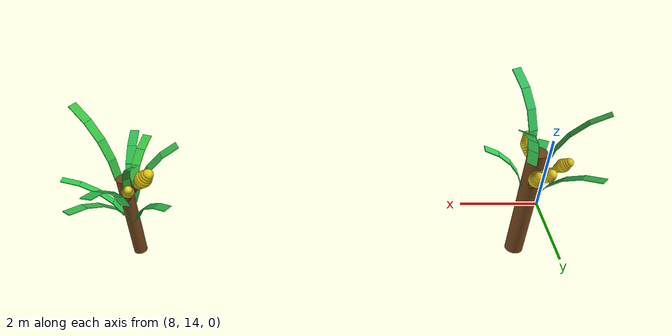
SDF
<sdf version="1.10">
 <world name="tree_world">
  <model name="tree_2_1">
   <pose>9.00 15.59 0 0 0 0</pose>
   <static>true</static>
   <link name="trunk">
    <pose>0 0 1.425 0 0 0</pose>
    <visual name="trunk_vis">
     <geometry><cylinder><radius>0.210</radius><length>2.850</length></cylinder></geometry>
     <material><diffuse>0.45 0.27 0.1 1</diffuse><ambient>0.45 0.27 0.1 1</ambient></material>
    </visual>
   </link>
   <link name="frond_2_1_0">
    <pose>0.205 -0.016 1.965 0 0.396862 -0.080004</pose>
    <visual name="frond_seg_2_1_0_0">
     <pose>0.000 0 0.171 0 0.000000 0</pose>
     <geometry><box><size>0.020 0.201 0.343</size></box></geometry>
     <material><diffuse>0.18 0.83 0.33 1</diffuse><ambient>0.18 0.83 0.33 1</ambient></material>
    </visual>
    <visual name="frond_seg_2_1_0_1">
     <pose>0.044 0 0.508 0 0.261799 0</pose>
     <geometry><box><size>0.020 0.201 0.343</size></box></geometry>
     <material><diffuse>0.18 0.83 0.33 1</diffuse><ambient>0.18 0.83 0.33 1</ambient></material>
    </visual>
    <visual name="frond_seg_2_1_0_2">
     <pose>0.174 0 0.822 0 0.523599 0</pose>
     <geometry><box><size>0.020 0.201 0.343</size></box></geometry>
     <material><diffuse>0.18 0.83 0.33 1</diffuse><ambient>0.18 0.83 0.33 1</ambient></material>
    </visual>
    <visual name="frond_seg_2_1_0_3">
     <pose>0.381 0 1.091 0 0.785398 0</pose>
     <geometry><box><size>0.020 0.201 0.343</size></box></geometry>
     <material><diffuse>0.18 0.83 0.33 1</diffuse><ambient>0.18 0.83 0.33 1</ambient></material>
    </visual>
   </link>
   <link name="frond_2_1_1">
    <pose>0.137 0.154 2.639 0 0.208693 0.840658</pose>
    <visual name="frond_seg_2_1_1_0">
     <pose>0.000 0 0.204 0 0.000000 0</pose>
     <geometry><box><size>0.020 0.233 0.409</size></box></geometry>
     <material><diffuse>0.22 0.79 0.32 1</diffuse><ambient>0.22 0.79 0.32 1</ambient></material>
    </visual>
    <visual name="frond_seg_2_1_1_1">
     <pose>0.053 0 0.606 0 0.261799 0</pose>
     <geometry><box><size>0.020 0.233 0.409</size></box></geometry>
     <material><diffuse>0.22 0.79 0.32 1</diffuse><ambient>0.22 0.79 0.32 1</ambient></material>
    </visual>
    <visual name="frond_seg_2_1_1_2">
     <pose>0.208 0 0.981 0 0.523599 0</pose>
     <geometry><box><size>0.020 0.233 0.409</size></box></geometry>
     <material><diffuse>0.22 0.79 0.32 1</diffuse><ambient>0.22 0.79 0.32 1</ambient></material>
    </visual>
    <visual name="frond_seg_2_1_1_3">
     <pose>0.455 0 1.303 0 0.785398 0</pose>
     <geometry><box><size>0.020 0.233 0.409</size></box></geometry>
     <material><diffuse>0.22 0.79 0.32 1</diffuse><ambient>0.22 0.79 0.32 1</ambient></material>
    </visual>
   </link>
   <link name="frond_2_1_2">
    <pose>-0.143 0.148 1.763 0 0.452808 2.338117</pose>
    <visual name="frond_seg_2_1_2_0">
     <pose>0.000 0 0.226 0 0.000000 0</pose>
     <geometry><box><size>0.020 0.204 0.452</size></box></geometry>
     <material><diffuse>0.20 0.79 0.32 1</diffuse><ambient>0.20 0.79 0.32 1</ambient></material>
    </visual>
    <visual name="frond_seg_2_1_2_1">
     <pose>0.058 0 0.670 0 0.261799 0</pose>
     <geometry><box><size>0.020 0.204 0.452</size></box></geometry>
     <material><diffuse>0.20 0.79 0.32 1</diffuse><ambient>0.20 0.79 0.32 1</ambient></material>
    </visual>
    <visual name="frond_seg_2_1_2_2">
     <pose>0.230 0 1.084 0 0.523599 0</pose>
     <geometry><box><size>0.020 0.204 0.452</size></box></geometry>
     <material><diffuse>0.20 0.79 0.32 1</diffuse><ambient>0.20 0.79 0.32 1</ambient></material>
    </visual>
    <visual name="frond_seg_2_1_2_3">
     <pose>0.503 0 1.440 0 0.785398 0</pose>
     <geometry><box><size>0.020 0.204 0.452</size></box></geometry>
     <material><diffuse>0.20 0.79 0.32 1</diffuse><ambient>0.20 0.79 0.32 1</ambient></material>
    </visual>
   </link>
   <link name="frond_2_1_3">
    <pose>-0.205 0.025 2.502 0 0.247243 3.020325</pose>
    <visual name="frond_seg_2_1_3_0">
     <pose>0.000 0 0.229 0 0.000000 0</pose>
     <geometry><box><size>0.020 0.159 0.458</size></box></geometry>
     <material><diffuse>0.24 0.77 0.30 1</diffuse><ambient>0.24 0.77 0.30 1</ambient></material>
    </visual>
    <visual name="frond_seg_2_1_3_1">
     <pose>0.059 0 0.679 0 0.261799 0</pose>
     <geometry><box><size>0.020 0.159 0.458</size></box></geometry>
     <material><diffuse>0.24 0.77 0.30 1</diffuse><ambient>0.24 0.77 0.30 1</ambient></material>
    </visual>
    <visual name="frond_seg_2_1_3_2">
     <pose>0.233 0 1.098 0 0.523599 0</pose>
     <geometry><box><size>0.020 0.159 0.458</size></box></geometry>
     <material><diffuse>0.24 0.77 0.30 1</diffuse><ambient>0.24 0.77 0.30 1</ambient></material>
    </visual>
    <visual name="frond_seg_2_1_3_3">
     <pose>0.509 0 1.458 0 0.785398 0</pose>
     <geometry><box><size>0.020 0.159 0.458</size></box></geometry>
     <material><diffuse>0.24 0.77 0.30 1</diffuse><ambient>0.24 0.77 0.30 1</ambient></material>
    </visual>
   </link>
   <link name="frond_2_1_4">
    <pose>-0.093 -0.184 1.902 0 0.414317 4.246560</pose>
    <visual name="frond_seg_2_1_4_0">
     <pose>0.000 0 0.129 0 0.000000 0</pose>
     <geometry><box><size>0.020 0.235 0.257</size></box></geometry>
     <material><diffuse>0.17 0.77 0.33 1</diffuse><ambient>0.17 0.77 0.33 1</ambient></material>
    </visual>
    <visual name="frond_seg_2_1_4_1">
     <pose>0.033 0 0.381 0 0.261799 0</pose>
     <geometry><box><size>0.020 0.235 0.257</size></box></geometry>
     <material><diffuse>0.17 0.77 0.33 1</diffuse><ambient>0.17 0.77 0.33 1</ambient></material>
    </visual>
    <visual name="frond_seg_2_1_4_2">
     <pose>0.131 0 0.617 0 0.523599 0</pose>
     <geometry><box><size>0.020 0.235 0.257</size></box></geometry>
     <material><diffuse>0.17 0.77 0.33 1</diffuse><ambient>0.17 0.77 0.33 1</ambient></material>
    </visual>
    <visual name="frond_seg_2_1_4_3">
     <pose>0.286 0 0.819 0 0.785398 0</pose>
     <geometry><box><size>0.020 0.235 0.257</size></box></geometry>
     <material><diffuse>0.17 0.77 0.33 1</diffuse><ambient>0.17 0.77 0.33 1</ambient></material>
    </visual>
   </link>
   <link name="frond_2_1_5">
    <pose>0.088 -0.186 2.768 0 0.155564 5.152389</pose>
    <visual name="frond_seg_2_1_5_0">
     <pose>0.000 0 0.235 0 0.000000 0</pose>
     <geometry><box><size>0.020 0.220 0.470</size></box></geometry>
     <material><diffuse>0.18 0.75 0.34 1</diffuse><ambient>0.18 0.75 0.34 1</ambient></material>
    </visual>
    <visual name="frond_seg_2_1_5_1">
     <pose>0.061 0 0.697 0 0.261799 0</pose>
     <geometry><box><size>0.020 0.220 0.470</size></box></geometry>
     <material><diffuse>0.18 0.75 0.34 1</diffuse><ambient>0.18 0.75 0.34 1</ambient></material>
    </visual>
    <visual name="frond_seg_2_1_5_2">
     <pose>0.239 0 1.128 0 0.523599 0</pose>
     <geometry><box><size>0.020 0.220 0.470</size></box></geometry>
     <material><diffuse>0.18 0.75 0.34 1</diffuse><ambient>0.18 0.75 0.34 1</ambient></material>
    </visual>
    <visual name="frond_seg_2_1_5_3">
     <pose>0.523 0 1.497 0 0.785398 0</pose>
     <geometry><box><size>0.020 0.220 0.470</size></box></geometry>
     <material><diffuse>0.18 0.75 0.34 1</diffuse><ambient>0.18 0.75 0.34 1</ambient></material>
    </visual>
   </link>
   <link name="fruit_bunch_2_1_0">
    <pose>0.009 -0.179 2.246 0 0.731399 4.763689</pose>
    <visual name="stalk_2_1_0">
     <pose>0 0 0.212 0 0 0</pose>
     <geometry><cylinder><radius>0.069</radius><length>0.424</length></cylinder></geometry>
     <material><diffuse>0.38 0.26 0.10 1</diffuse><ambient>0.38 0.26 0.10 1</ambient></material>
    </visual>
    <visual name="fruit_2_1_0_seg0">
     <pose>0 0 0.380 0 0 0</pose>
     <geometry><sphere><radius>0.113</radius></sphere></geometry>
     <material><diffuse>0.86 0.77 0.12 1</diffuse><ambient>0.86 0.77 0.12 1</ambient></material>
    </visual>
    <visual name="fruit_2_1_0_seg1">
     <pose>0 0 0.442 0 0 0</pose>
     <geometry><sphere><radius>0.133</radius></sphere></geometry>
     <material><diffuse>0.86 0.77 0.12 1</diffuse><ambient>0.86 0.77 0.12 1</ambient></material>
    </visual>
    <visual name="fruit_2_1_0_seg2">
     <pose>0 0 0.504 0 0 0</pose>
     <geometry><sphere><radius>0.153</radius></sphere></geometry>
     <material><diffuse>0.86 0.77 0.12 1</diffuse><ambient>0.86 0.77 0.12 1</ambient></material>
    </visual>
    <visual name="fruit_2_1_0_seg3">
     <pose>0 0 0.566 0 0 0</pose>
     <geometry><sphere><radius>0.173</radius></sphere></geometry>
     <material><diffuse>0.86 0.77 0.12 1</diffuse><ambient>0.86 0.77 0.12 1</ambient></material>
    </visual>
    <visual name="fruit_2_1_0_seg4">
     <pose>0 0 0.628 0 0 0</pose>
     <geometry><sphere><radius>0.153</radius></sphere></geometry>
     <material><diffuse>0.86 0.77 0.12 1</diffuse><ambient>0.86 0.77 0.12 1</ambient></material>
    </visual>
    <visual name="fruit_2_1_0_seg5">
     <pose>0 0 0.691 0 0 0</pose>
     <geometry><sphere><radius>0.133</radius></sphere></geometry>
     <material><diffuse>0.86 0.77 0.12 1</diffuse><ambient>0.86 0.77 0.12 1</ambient></material>
    </visual>
    <visual name="fruit_2_1_0_seg6">
     <pose>0 0 0.753 0 0 0</pose>
     <geometry><sphere><radius>0.113</radius></sphere></geometry>
     <material><diffuse>0.86 0.77 0.12 1</diffuse><ambient>0.86 0.77 0.12 1</ambient></material>
    </visual>
   </link>
   <link name="fruit_bunch_2_1_1">
    <pose>-0.160 0.081 2.270 0 0.741056 2.673519</pose>
    <visual name="stalk_2_1_1">
     <pose>0 0 0.228 0 0 0</pose>
     <geometry><cylinder><radius>0.060</radius><length>0.455</length></cylinder></geometry>
     <material><diffuse>0.36 0.25 0.13 1</diffuse><ambient>0.36 0.25 0.13 1</ambient></material>
    </visual>
    <visual name="fruit_2_1_1_seg0">
     <pose>0 0 0.418 0 0 0</pose>
     <geometry><sphere><radius>0.097</radius></sphere></geometry>
     <material><diffuse>0.88 0.76 0.07 1</diffuse><ambient>0.88 0.76 0.07 1</ambient></material>
    </visual>
    <visual name="fruit_2_1_1_seg1">
     <pose>0 0 0.465 0 0 0</pose>
     <geometry><sphere><radius>0.115</radius></sphere></geometry>
     <material><diffuse>0.88 0.76 0.07 1</diffuse><ambient>0.88 0.76 0.07 1</ambient></material>
    </visual>
    <visual name="fruit_2_1_1_seg2">
     <pose>0 0 0.512 0 0 0</pose>
     <geometry><sphere><radius>0.132</radius></sphere></geometry>
     <material><diffuse>0.88 0.76 0.07 1</diffuse><ambient>0.88 0.76 0.07 1</ambient></material>
    </visual>
    <visual name="fruit_2_1_1_seg3">
     <pose>0 0 0.559 0 0 0</pose>
     <geometry><sphere><radius>0.150</radius></sphere></geometry>
     <material><diffuse>0.88 0.76 0.07 1</diffuse><ambient>0.88 0.76 0.07 1</ambient></material>
    </visual>
    <visual name="fruit_2_1_1_seg4">
     <pose>0 0 0.606 0 0 0</pose>
     <geometry><sphere><radius>0.132</radius></sphere></geometry>
     <material><diffuse>0.88 0.76 0.07 1</diffuse><ambient>0.88 0.76 0.07 1</ambient></material>
    </visual>
    <visual name="fruit_2_1_1_seg5">
     <pose>0 0 0.653 0 0 0</pose>
     <geometry><sphere><radius>0.115</radius></sphere></geometry>
     <material><diffuse>0.88 0.76 0.07 1</diffuse><ambient>0.88 0.76 0.07 1</ambient></material>
    </visual>
    <visual name="fruit_2_1_1_seg6">
     <pose>0 0 0.700 0 0 0</pose>
     <geometry><sphere><radius>0.097</radius></sphere></geometry>
     <material><diffuse>0.88 0.76 0.07 1</diffuse><ambient>0.88 0.76 0.07 1</ambient></material>
    </visual>
   </link>
   <link name="fruit_bunch_2_1_2">
    <pose>0.037 0.174 2.074 0 0.695374 1.359585</pose>
    <visual name="stalk_2_1_2">
     <pose>0 0 0.248 0 0 0</pose>
     <geometry><cylinder><radius>0.072</radius><length>0.496</length></cylinder></geometry>
     <material><diffuse>0.37 0.22 0.05 1</diffuse><ambient>0.37 0.22 0.05 1</ambient></material>
    </visual>
    <visual name="fruit_2_1_2_seg0">
     <pose>0 0 0.452 0 0 0</pose>
     <geometry><sphere><radius>0.117</radius></sphere></geometry>
     <material><diffuse>0.88 0.76 0.07 1</diffuse><ambient>0.88 0.76 0.07 1</ambient></material>
    </visual>
    <visual name="fruit_2_1_2_seg1">
     <pose>0 0 0.512 0 0 0</pose>
     <geometry><sphere><radius>0.137</radius></sphere></geometry>
     <material><diffuse>0.88 0.76 0.07 1</diffuse><ambient>0.88 0.76 0.07 1</ambient></material>
    </visual>
    <visual name="fruit_2_1_2_seg2">
     <pose>0 0 0.572 0 0 0</pose>
     <geometry><sphere><radius>0.158</radius></sphere></geometry>
     <material><diffuse>0.88 0.76 0.07 1</diffuse><ambient>0.88 0.76 0.07 1</ambient></material>
    </visual>
    <visual name="fruit_2_1_2_seg3">
     <pose>0 0 0.632 0 0 0</pose>
     <geometry><sphere><radius>0.179</radius></sphere></geometry>
     <material><diffuse>0.88 0.76 0.07 1</diffuse><ambient>0.88 0.76 0.07 1</ambient></material>
    </visual>
    <visual name="fruit_2_1_2_seg4">
     <pose>0 0 0.692 0 0 0</pose>
     <geometry><sphere><radius>0.158</radius></sphere></geometry>
     <material><diffuse>0.88 0.76 0.07 1</diffuse><ambient>0.88 0.76 0.07 1</ambient></material>
    </visual>
    <visual name="fruit_2_1_2_seg5">
     <pose>0 0 0.752 0 0 0</pose>
     <geometry><sphere><radius>0.137</radius></sphere></geometry>
     <material><diffuse>0.88 0.76 0.07 1</diffuse><ambient>0.88 0.76 0.07 1</ambient></material>
    </visual>
    <visual name="fruit_2_1_2_seg6">
     <pose>0 0 0.813 0 0 0</pose>
     <geometry><sphere><radius>0.117</radius></sphere></geometry>
     <material><diffuse>0.88 0.76 0.07 1</diffuse><ambient>0.88 0.76 0.07 1</ambient></material>
    </visual>
   </link>
   <link name="fruit_bunch_2_1_3">
    <pose>-0.027 0.178 2.270 0 0.780912 1.723549</pose>
    <visual name="stalk_2_1_3">
     <pose>0 0 0.227 0 0 0</pose>
     <geometry><cylinder><radius>0.067</radius><length>0.455</length></cylinder></geometry>
     <material><diffuse>0.41 0.25 0.09 1</diffuse><ambient>0.41 0.25 0.09 1</ambient></material>
    </visual>
    <visual name="fruit_2_1_3_seg0">
     <pose>0 0 0.413 0 0 0</pose>
     <geometry><sphere><radius>0.108</radius></sphere></geometry>
     <material><diffuse>0.94 0.80 0.14 1</diffuse><ambient>0.94 0.80 0.14 1</ambient></material>
    </visual>
    <visual name="fruit_2_1_3_seg1">
     <pose>0 0 0.463 0 0 0</pose>
     <geometry><sphere><radius>0.128</radius></sphere></geometry>
     <material><diffuse>0.94 0.80 0.14 1</diffuse><ambient>0.94 0.80 0.14 1</ambient></material>
    </visual>
    <visual name="fruit_2_1_3_seg2">
     <pose>0 0 0.514 0 0 0</pose>
     <geometry><sphere><radius>0.147</radius></sphere></geometry>
     <material><diffuse>0.94 0.80 0.14 1</diffuse><ambient>0.94 0.80 0.14 1</ambient></material>
    </visual>
    <visual name="fruit_2_1_3_seg3">
     <pose>0 0 0.564 0 0 0</pose>
     <geometry><sphere><radius>0.167</radius></sphere></geometry>
     <material><diffuse>0.94 0.80 0.14 1</diffuse><ambient>0.94 0.80 0.14 1</ambient></material>
    </visual>
    <visual name="fruit_2_1_3_seg4">
     <pose>0 0 0.614 0 0 0</pose>
     <geometry><sphere><radius>0.147</radius></sphere></geometry>
     <material><diffuse>0.94 0.80 0.14 1</diffuse><ambient>0.94 0.80 0.14 1</ambient></material>
    </visual>
    <visual name="fruit_2_1_3_seg5">
     <pose>0 0 0.665 0 0 0</pose>
     <geometry><sphere><radius>0.128</radius></sphere></geometry>
     <material><diffuse>0.94 0.80 0.14 1</diffuse><ambient>0.94 0.80 0.14 1</ambient></material>
    </visual>
    <visual name="fruit_2_1_3_seg6">
     <pose>0 0 0.715 0 0 0</pose>
     <geometry><sphere><radius>0.108</radius></sphere></geometry>
     <material><diffuse>0.94 0.80 0.14 1</diffuse><ambient>0.94 0.80 0.14 1</ambient></material>
    </visual>
   </link>
  </model>
  <model name="tree_2_2">
   <pose>18.00 15.59 0 0 0 0</pose>
   <static>true</static>
   <link name="trunk">
    <pose>0 0 1.092 0 0 0</pose>
    <visual name="trunk_vis">
     <geometry><cylinder><radius>0.155</radius><length>2.184</length></cylinder></geometry>
     <material><diffuse>0.45 0.27 0.1 1</diffuse><ambient>0.45 0.27 0.1 1</ambient></material>
    </visual>
   </link>
   <link name="frond_2_2_0">
    <pose>0.151 -0.008 1.158 0 0.525526 -0.051989</pose>
    <visual name="frond_seg_2_2_0_0">
     <pose>0.000 0 0.204 0 0.000000 0</pose>
     <geometry><box><size>0.020 0.155 0.407</size></box></geometry>
     <material><diffuse>0.16 0.81 0.28 1</diffuse><ambient>0.16 0.81 0.28 1</ambient></material>
    </visual>
    <visual name="frond_seg_2_2_0_1">
     <pose>0.053 0 0.604 0 0.261799 0</pose>
     <geometry><box><size>0.020 0.155 0.407</size></box></geometry>
     <material><diffuse>0.16 0.81 0.28 1</diffuse><ambient>0.16 0.81 0.28 1</ambient></material>
    </visual>
    <visual name="frond_seg_2_2_0_2">
     <pose>0.207 0 0.977 0 0.523599 0</pose>
     <geometry><box><size>0.020 0.155 0.407</size></box></geometry>
     <material><diffuse>0.16 0.81 0.28 1</diffuse><ambient>0.16 0.81 0.28 1</ambient></material>
    </visual>
    <visual name="frond_seg_2_2_0_3">
     <pose>0.453 0 1.298 0 0.785398 0</pose>
     <geometry><box><size>0.020 0.155 0.407</size></box></geometry>
     <material><diffuse>0.16 0.81 0.28 1</diffuse><ambient>0.16 0.81 0.28 1</ambient></material>
    </visual>
   </link>
   <link name="frond_2_2_1">
    <pose>0.087 0.124 1.201 0 0.509844 0.956747</pose>
    <visual name="frond_seg_2_2_1_0">
     <pose>0.000 0 0.221 0 0.000000 0</pose>
     <geometry><box><size>0.020 0.211 0.441</size></box></geometry>
     <material><diffuse>0.23 0.77 0.30 1</diffuse><ambient>0.23 0.77 0.30 1</ambient></material>
    </visual>
    <visual name="frond_seg_2_2_1_1">
     <pose>0.057 0 0.654 0 0.261799 0</pose>
     <geometry><box><size>0.020 0.211 0.441</size></box></geometry>
     <material><diffuse>0.23 0.77 0.30 1</diffuse><ambient>0.23 0.77 0.30 1</ambient></material>
    </visual>
    <visual name="frond_seg_2_2_1_2">
     <pose>0.224 0 1.058 0 0.523599 0</pose>
     <geometry><box><size>0.020 0.211 0.441</size></box></geometry>
     <material><diffuse>0.23 0.77 0.30 1</diffuse><ambient>0.23 0.77 0.30 1</ambient></material>
    </visual>
    <visual name="frond_seg_2_2_1_3">
     <pose>0.491 0 1.405 0 0.785398 0</pose>
     <geometry><box><size>0.020 0.211 0.441</size></box></geometry>
     <material><diffuse>0.23 0.77 0.30 1</diffuse><ambient>0.23 0.77 0.30 1</ambient></material>
    </visual>
   </link>
   <link name="frond_2_2_2">
    <pose>0.030 0.148 1.518 0 0.395238 1.370353</pose>
    <visual name="frond_seg_2_2_2_0">
     <pose>0.000 0 0.233 0 0.000000 0</pose>
     <geometry><box><size>0.020 0.249 0.465</size></box></geometry>
     <material><diffuse>0.18 0.81 0.31 1</diffuse><ambient>0.18 0.81 0.31 1</ambient></material>
    </visual>
    <visual name="frond_seg_2_2_2_1">
     <pose>0.060 0 0.690 0 0.261799 0</pose>
     <geometry><box><size>0.020 0.249 0.465</size></box></geometry>
     <material><diffuse>0.18 0.81 0.31 1</diffuse><ambient>0.18 0.81 0.31 1</ambient></material>
    </visual>
    <visual name="frond_seg_2_2_2_2">
     <pose>0.237 0 1.116 0 0.523599 0</pose>
     <geometry><box><size>0.020 0.249 0.465</size></box></geometry>
     <material><diffuse>0.18 0.81 0.31 1</diffuse><ambient>0.18 0.81 0.31 1</ambient></material>
    </visual>
    <visual name="frond_seg_2_2_2_3">
     <pose>0.517 0 1.481 0 0.785398 0</pose>
     <geometry><box><size>0.020 0.249 0.465</size></box></geometry>
     <material><diffuse>0.18 0.81 0.31 1</diffuse><ambient>0.18 0.81 0.31 1</ambient></material>
    </visual>
   </link>
   <link name="frond_2_2_3">
    <pose>-0.091 0.120 2.005 0 0.216803 2.220106</pose>
    <visual name="frond_seg_2_2_3_0">
     <pose>0.000 0 0.151 0 0.000000 0</pose>
     <geometry><box><size>0.020 0.171 0.302</size></box></geometry>
     <material><diffuse>0.22 0.77 0.27 1</diffuse><ambient>0.22 0.77 0.27 1</ambient></material>
    </visual>
    <visual name="frond_seg_2_2_3_1">
     <pose>0.039 0 0.448 0 0.261799 0</pose>
     <geometry><box><size>0.020 0.171 0.302</size></box></geometry>
     <material><diffuse>0.22 0.77 0.27 1</diffuse><ambient>0.22 0.77 0.27 1</ambient></material>
    </visual>
    <visual name="frond_seg_2_2_3_2">
     <pose>0.154 0 0.724 0 0.523599 0</pose>
     <geometry><box><size>0.020 0.171 0.302</size></box></geometry>
     <material><diffuse>0.22 0.77 0.27 1</diffuse><ambient>0.22 0.77 0.27 1</ambient></material>
    </visual>
    <visual name="frond_seg_2_2_3_3">
     <pose>0.336 0 0.962 0 0.785398 0</pose>
     <geometry><box><size>0.020 0.171 0.302</size></box></geometry>
     <material><diffuse>0.22 0.77 0.27 1</diffuse><ambient>0.22 0.77 0.27 1</ambient></material>
    </visual>
   </link>
   <link name="frond_2_2_4">
    <pose>-0.127 0.082 1.088 0 0.550763 2.570031</pose>
    <visual name="frond_seg_2_2_4_0">
     <pose>0.000 0 0.181 0 0.000000 0</pose>
     <geometry><box><size>0.020 0.209 0.363</size></box></geometry>
     <material><diffuse>0.18 0.77 0.32 1</diffuse><ambient>0.18 0.77 0.32 1</ambient></material>
    </visual>
    <visual name="frond_seg_2_2_4_1">
     <pose>0.047 0 0.538 0 0.261799 0</pose>
     <geometry><box><size>0.020 0.209 0.363</size></box></geometry>
     <material><diffuse>0.18 0.77 0.32 1</diffuse><ambient>0.18 0.77 0.32 1</ambient></material>
    </visual>
    <visual name="frond_seg_2_2_4_2">
     <pose>0.185 0 0.870 0 0.523599 0</pose>
     <geometry><box><size>0.020 0.209 0.363</size></box></geometry>
     <material><diffuse>0.18 0.77 0.32 1</diffuse><ambient>0.18 0.77 0.32 1</ambient></material>
    </visual>
    <visual name="frond_seg_2_2_4_3">
     <pose>0.403 0 1.155 0 0.785398 0</pose>
     <geometry><box><size>0.020 0.209 0.363</size></box></geometry>
     <material><diffuse>0.18 0.77 0.32 1</diffuse><ambient>0.18 0.77 0.32 1</ambient></material>
    </visual>
   </link>
   <link name="frond_2_2_5">
    <pose>-0.136 -0.066 1.529 0 0.391241 3.596943</pose>
    <visual name="frond_seg_2_2_5_0">
     <pose>0.000 0 0.211 0 0.000000 0</pose>
     <geometry><box><size>0.020 0.242 0.422</size></box></geometry>
     <material><diffuse>0.23 0.81 0.32 1</diffuse><ambient>0.23 0.81 0.32 1</ambient></material>
    </visual>
    <visual name="frond_seg_2_2_5_1">
     <pose>0.055 0 0.626 0 0.261799 0</pose>
     <geometry><box><size>0.020 0.242 0.422</size></box></geometry>
     <material><diffuse>0.23 0.81 0.32 1</diffuse><ambient>0.23 0.81 0.32 1</ambient></material>
    </visual>
    <visual name="frond_seg_2_2_5_2">
     <pose>0.215 0 1.012 0 0.523599 0</pose>
     <geometry><box><size>0.020 0.242 0.422</size></box></geometry>
     <material><diffuse>0.23 0.81 0.32 1</diffuse><ambient>0.23 0.81 0.32 1</ambient></material>
    </visual>
    <visual name="frond_seg_2_2_5_3">
     <pose>0.469 0 1.344 0 0.785398 0</pose>
     <geometry><box><size>0.020 0.242 0.422</size></box></geometry>
     <material><diffuse>0.23 0.81 0.32 1</diffuse><ambient>0.23 0.81 0.32 1</ambient></material>
    </visual>
   </link>
   <link name="frond_2_2_6">
    <pose>-0.044 -0.145 1.501 0 0.401452 4.415858</pose>
    <visual name="frond_seg_2_2_6_0">
     <pose>0.000 0 0.193 0 0.000000 0</pose>
     <geometry><box><size>0.020 0.215 0.386</size></box></geometry>
     <material><diffuse>0.24 0.83 0.26 1</diffuse><ambient>0.24 0.83 0.26 1</ambient></material>
    </visual>
    <visual name="frond_seg_2_2_6_1">
     <pose>0.050 0 0.573 0 0.261799 0</pose>
     <geometry><box><size>0.020 0.215 0.386</size></box></geometry>
     <material><diffuse>0.24 0.83 0.26 1</diffuse><ambient>0.24 0.83 0.26 1</ambient></material>
    </visual>
    <visual name="frond_seg_2_2_6_2">
     <pose>0.196 0 0.926 0 0.523599 0</pose>
     <geometry><box><size>0.020 0.215 0.386</size></box></geometry>
     <material><diffuse>0.24 0.83 0.26 1</diffuse><ambient>0.24 0.83 0.26 1</ambient></material>
    </visual>
    <visual name="frond_seg_2_2_6_3">
     <pose>0.430 0 1.230 0 0.785398 0</pose>
     <geometry><box><size>0.020 0.215 0.386</size></box></geometry>
     <material><diffuse>0.24 0.83 0.26 1</diffuse><ambient>0.24 0.83 0.26 1</ambient></material>
    </visual>
   </link>
   <link name="frond_2_2_7">
    <pose>-0.000 -0.151 1.386 0 0.442990 4.711999</pose>
    <visual name="frond_seg_2_2_7_0">
     <pose>0.000 0 0.219 0 0.000000 0</pose>
     <geometry><box><size>0.020 0.207 0.437</size></box></geometry>
     <material><diffuse>0.18 0.76 0.32 1</diffuse><ambient>0.18 0.76 0.32 1</ambient></material>
    </visual>
    <visual name="frond_seg_2_2_7_1">
     <pose>0.057 0 0.648 0 0.261799 0</pose>
     <geometry><box><size>0.020 0.207 0.437</size></box></geometry>
     <material><diffuse>0.18 0.76 0.32 1</diffuse><ambient>0.18 0.76 0.32 1</ambient></material>
    </visual>
    <visual name="frond_seg_2_2_7_2">
     <pose>0.222 0 1.049 0 0.523599 0</pose>
     <geometry><box><size>0.020 0.207 0.437</size></box></geometry>
     <material><diffuse>0.18 0.76 0.32 1</diffuse><ambient>0.18 0.76 0.32 1</ambient></material>
    </visual>
    <visual name="frond_seg_2_2_7_3">
     <pose>0.486 0 1.393 0 0.785398 0</pose>
     <geometry><box><size>0.020 0.207 0.437</size></box></geometry>
     <material><diffuse>0.18 0.76 0.32 1</diffuse><ambient>0.18 0.76 0.32 1</ambient></material>
    </visual>
   </link>
   <link name="frond_2_2_8">
    <pose>0.125 -0.085 2.116 0 0.159010 5.689634</pose>
    <visual name="frond_seg_2_2_8_0">
     <pose>0.000 0 0.243 0 0.000000 0</pose>
     <geometry><box><size>0.020 0.200 0.486</size></box></geometry>
     <material><diffuse>0.20 0.76 0.25 1</diffuse><ambient>0.20 0.76 0.25 1</ambient></material>
    </visual>
    <visual name="frond_seg_2_2_8_1">
     <pose>0.063 0 0.720 0 0.261799 0</pose>
     <geometry><box><size>0.020 0.200 0.486</size></box></geometry>
     <material><diffuse>0.20 0.76 0.25 1</diffuse><ambient>0.20 0.76 0.25 1</ambient></material>
    </visual>
    <visual name="frond_seg_2_2_8_2">
     <pose>0.247 0 1.165 0 0.523599 0</pose>
     <geometry><box><size>0.020 0.200 0.486</size></box></geometry>
     <material><diffuse>0.20 0.76 0.25 1</diffuse><ambient>0.20 0.76 0.25 1</ambient></material>
    </visual>
    <visual name="frond_seg_2_2_8_3">
     <pose>0.540 0 1.547 0 0.785398 0</pose>
     <geometry><box><size>0.020 0.200 0.486</size></box></geometry>
     <material><diffuse>0.20 0.76 0.25 1</diffuse><ambient>0.20 0.76 0.25 1</ambient></material>
    </visual>
   </link>
   <link name="fruit_bunch_2_2_0">
    <pose>-0.057 0.117 1.699 0 0.654563 2.025206</pose>
    <visual name="stalk_2_2_0">
     <pose>0 0 0.247 0 0 0</pose>
     <geometry><cylinder><radius>0.053</radius><length>0.494</length></cylinder></geometry>
     <material><diffuse>0.42 0.23 0.05 1</diffuse><ambient>0.42 0.23 0.05 1</ambient></material>
    </visual>
    <visual name="fruit_2_2_0_seg0">
     <pose>0 0 0.461 0 0 0</pose>
     <geometry><sphere><radius>0.086</radius></sphere></geometry>
     <material><diffuse>0.91 0.85 0.15 1</diffuse><ambient>0.91 0.85 0.15 1</ambient></material>
    </visual>
    <visual name="fruit_2_2_0_seg1">
     <pose>0 0 0.509 0 0 0</pose>
     <geometry><sphere><radius>0.101</radius></sphere></geometry>
     <material><diffuse>0.91 0.85 0.15 1</diffuse><ambient>0.91 0.85 0.15 1</ambient></material>
    </visual>
    <visual name="fruit_2_2_0_seg2">
     <pose>0 0 0.557 0 0 0</pose>
     <geometry><sphere><radius>0.116</radius></sphere></geometry>
     <material><diffuse>0.91 0.85 0.15 1</diffuse><ambient>0.91 0.85 0.15 1</ambient></material>
    </visual>
    <visual name="fruit_2_2_0_seg3">
     <pose>0 0 0.604 0 0 0</pose>
     <geometry><sphere><radius>0.132</radius></sphere></geometry>
     <material><diffuse>0.91 0.85 0.15 1</diffuse><ambient>0.91 0.85 0.15 1</ambient></material>
    </visual>
    <visual name="fruit_2_2_0_seg4">
     <pose>0 0 0.652 0 0 0</pose>
     <geometry><sphere><radius>0.116</radius></sphere></geometry>
     <material><diffuse>0.91 0.85 0.15 1</diffuse><ambient>0.91 0.85 0.15 1</ambient></material>
    </visual>
    <visual name="fruit_2_2_0_seg5">
     <pose>0 0 0.700 0 0 0</pose>
     <geometry><sphere><radius>0.101</radius></sphere></geometry>
     <material><diffuse>0.91 0.85 0.15 1</diffuse><ambient>0.91 0.85 0.15 1</ambient></material>
    </visual>
    <visual name="fruit_2_2_0_seg6">
     <pose>0 0 0.747 0 0 0</pose>
     <geometry><sphere><radius>0.086</radius></sphere></geometry>
     <material><diffuse>0.91 0.85 0.15 1</diffuse><ambient>0.91 0.85 0.15 1</ambient></material>
    </visual>
   </link>
   <link name="fruit_bunch_2_2_1">
    <pose>-0.130 0.024 1.839 0 0.724575 2.956244</pose>
    <visual name="stalk_2_2_1">
     <pose>0 0 0.189 0 0 0</pose>
     <geometry><cylinder><radius>0.077</radius><length>0.377</length></cylinder></geometry>
     <material><diffuse>0.38 0.23 0.12 1</diffuse><ambient>0.38 0.23 0.12 1</ambient></material>
    </visual>
    <visual name="fruit_2_2_1_seg0">
     <pose>0 0 0.329 0 0 0</pose>
     <geometry><sphere><radius>0.126</radius></sphere></geometry>
     <material><diffuse>0.91 0.80 0.06 1</diffuse><ambient>0.91 0.80 0.06 1</ambient></material>
    </visual>
    <visual name="fruit_2_2_1_seg1">
     <pose>0 0 0.395 0 0 0</pose>
     <geometry><sphere><radius>0.149</radius></sphere></geometry>
     <material><diffuse>0.91 0.80 0.06 1</diffuse><ambient>0.91 0.80 0.06 1</ambient></material>
    </visual>
    <visual name="fruit_2_2_1_seg2">
     <pose>0 0 0.461 0 0 0</pose>
     <geometry><sphere><radius>0.171</radius></sphere></geometry>
     <material><diffuse>0.91 0.80 0.06 1</diffuse><ambient>0.91 0.80 0.06 1</ambient></material>
    </visual>
    <visual name="fruit_2_2_1_seg3">
     <pose>0 0 0.527 0 0 0</pose>
     <geometry><sphere><radius>0.194</radius></sphere></geometry>
     <material><diffuse>0.91 0.80 0.06 1</diffuse><ambient>0.91 0.80 0.06 1</ambient></material>
    </visual>
    <visual name="fruit_2_2_1_seg4">
     <pose>0 0 0.593 0 0 0</pose>
     <geometry><sphere><radius>0.171</radius></sphere></geometry>
     <material><diffuse>0.91 0.80 0.06 1</diffuse><ambient>0.91 0.80 0.06 1</ambient></material>
    </visual>
    <visual name="fruit_2_2_1_seg5">
     <pose>0 0 0.659 0 0 0</pose>
     <geometry><sphere><radius>0.149</radius></sphere></geometry>
     <material><diffuse>0.91 0.80 0.06 1</diffuse><ambient>0.91 0.80 0.06 1</ambient></material>
    </visual>
    <visual name="fruit_2_2_1_seg6">
     <pose>0 0 0.724 0 0 0</pose>
     <geometry><sphere><radius>0.126</radius></sphere></geometry>
     <material><diffuse>0.91 0.80 0.06 1</diffuse><ambient>0.91 0.80 0.06 1</ambient></material>
    </visual>
   </link>
  </model>
 </world>
</sdf>
